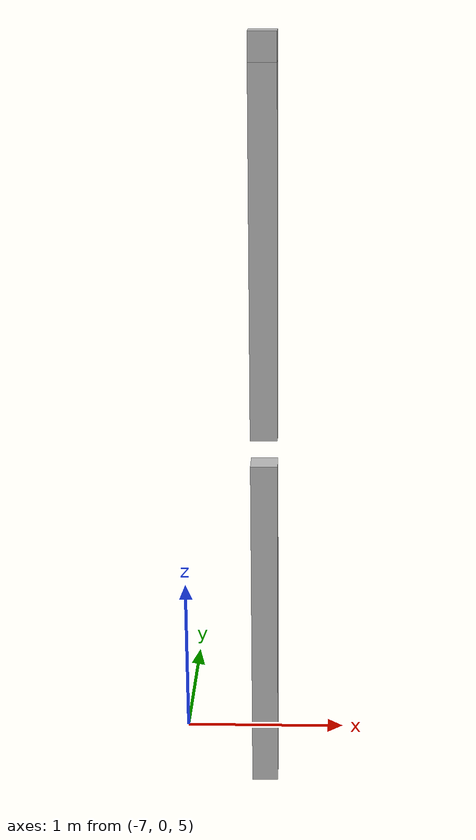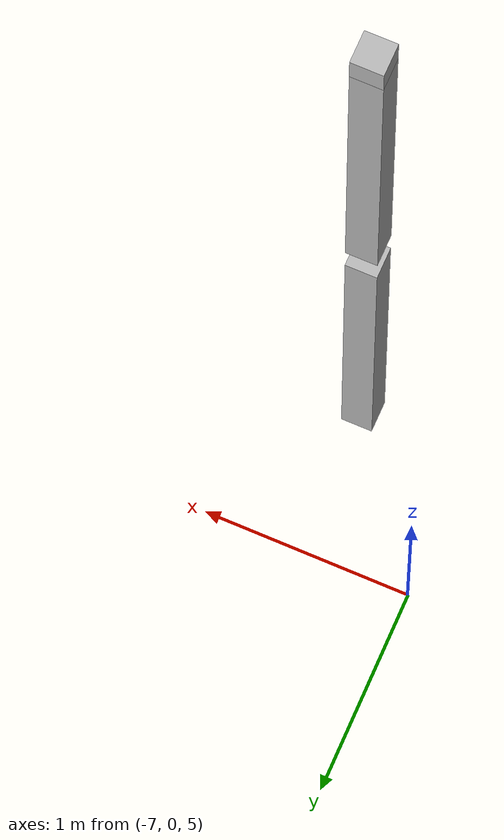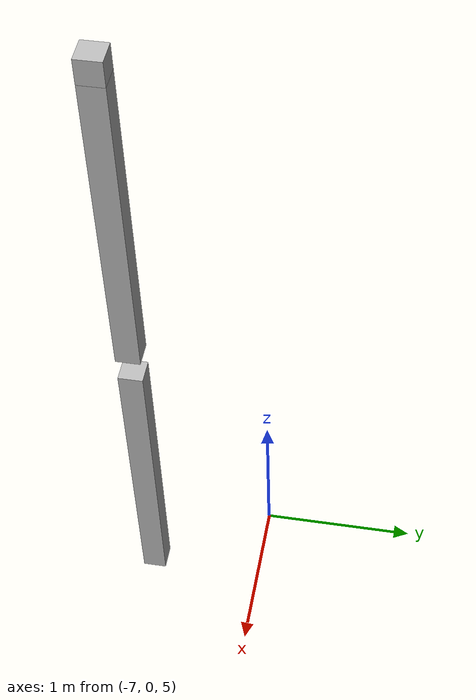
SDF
<sdf version="1.7">
 <world name="default">
  <model name="orthogonal_747_2.000.15_TS">
   <static>1</static>
   <link name="z_link_4_2_0">
    <inertial>
     <mass>1</mass>
     <inertia>
      <ixx>0.166667</ixx>
      <ixy>0</ixy>
      <ixz>0</ixz>
      <iyy>0.166667</iyy>
      <iyz>0</iyz>
      <izz>0.166667</izz>
     </inertia>
    </inertial>
    <pose>0 4.3 8.6 0 -0 0</pose>
    <visual name="visual_0">
     <laser_retro>3872</laser_retro>
     <geometry><box><size>0.15 1e-06 2</size></box></geometry>
     <material>
      <script><name>Gazebo/Grey</name><uri>file://media/materials/scripts/gazebo.material</uri></script>
      <shader type="pixel"><normal_map>__default__</normal_map></shader>
      <ambient>0.678 0.498 0.659 1</ambient>
      <diffuse>0.7 0.7 0.7 1</diffuse>
      <specular>0.01 0.01 0.01 1</specular>
      <emissive>0 0 0 1</emissive>
     </material>
     <pose>0 -0.075 0 0 -0 0</pose>
     <transparency>1</transparency>
    </visual>
    <visual name="visual_1">
     <laser_retro>3873</laser_retro>
     <geometry><box><size>0.15 1e-06 2</size></box></geometry>
     <material>
      <script><name>Gazebo/Grey</name><uri>file://media/materials/scripts/gazebo.material</uri></script>
      <shader type="pixel"><normal_map>__default__</normal_map></shader>
      <ambient>0.447 0.624 0.812 1</ambient>
      <diffuse>0.7 0.7 0.7 1</diffuse>
      <specular>0.01 0.01 0.01 1</specular>
      <emissive>0 0 0 1</emissive>
     </material>
     <pose>0 0.075 0 0 -0 0</pose>
     <transparency>1</transparency>
    </visual>
    <visual name="visual_2">
     <laser_retro>3874</laser_retro>
     <geometry><box><size>0.15 0.15 1e-06</size></box></geometry>
     <material>
      <script><name>Gazebo/Grey</name><uri>file://media/materials/scripts/gazebo.material</uri></script>
      <shader type="pixel"><normal_map>__default__</normal_map></shader>
      <ambient>0.988 0.686 0.243 1</ambient>
      <diffuse>0.7 0.7 0.7 1</diffuse>
      <specular>0.01 0.01 0.01 1</specular>
      <emissive>0 0 0 1</emissive>
     </material>
     <pose>0 0 -1 0 -0 0</pose>
     <transparency>1</transparency>
    </visual>
    <visual name="visual_3">
     <laser_retro>3875</laser_retro>
     <geometry><box><size>1e-06 0.15 2</size></box></geometry>
     <material>
      <script><name>Gazebo/Grey</name><uri>file://media/materials/scripts/gazebo.material</uri></script>
      <shader type="pixel"><normal_map>__default__</normal_map></shader>
      <ambient>0.988 0.914 0.31 1</ambient>
      <diffuse>0.7 0.7 0.7 1</diffuse>
      <specular>0.01 0.01 0.01 1</specular>
      <emissive>0 0 0 1</emissive>
     </material>
     <pose>0.075 0 0 0 -0 0</pose>
     <transparency>1</transparency>
    </visual>
    <visual name="visual_4">
     <laser_retro>3876</laser_retro>
     <geometry><box><size>0.15 0.15 1e-06</size></box></geometry>
     <material>
      <script><name>Gazebo/Grey</name><uri>file://media/materials/scripts/gazebo.material</uri></script>
      <shader type="pixel"><normal_map>__default__</normal_map></shader>
      <ambient>0.937 0.161 0.161 1</ambient>
      <diffuse>0.7 0.7 0.7 1</diffuse>
      <specular>0.01 0.01 0.01 1</specular>
      <emissive>0 0 0 1</emissive>
     </material>
     <pose>0 0 1 0 -0 0</pose>
     <transparency>1</transparency>
    </visual>
    <visual name="visual_5">
     <laser_retro>3877</laser_retro>
     <geometry><box><size>1e-06 0.15 2</size></box></geometry>
     <material>
      <script><name>Gazebo/Grey</name><uri>file://media/materials/scripts/gazebo.material</uri></script>
      <shader type="pixel"><normal_map>__default__</normal_map></shader>
      <ambient>0.541 0.886 0.204 1</ambient>
      <diffuse>0.7 0.7 0.7 1</diffuse>
      <specular>0.01 0.01 0.01 1</specular>
      <emissive>0 0 0 1</emissive>
     </material>
     <pose>-0.075 0 0 0 -0 0</pose>
     <transparency>1</transparency>
    </visual>
    <visual name="visual_texture">
     <geometry><box><size>0.149985 0.149985 1.9998</size></box></geometry>
     <material>
      <script>
       <uri>model://BASE_MODELS/simple_block_v2_textured/materials/scripts</uri>
       <uri>model://BASE_MODELS/simple_block_v2_textured/materials/textures</uri>
       <name>metal</name>
      </script>
     </material>
     <laser_retro>3878</laser_retro>
    </visual>
    <collision name="collision">
     <geometry><box><size>0.15 0.15 2</size></box></geometry>
     <surface>
      <friction>
       <ode><mu>1</mu><mu2>1</mu2><fdir1>0 0 0</fdir1><slip1>0</slip1><slip2>0</slip2></ode>
       <torsional>
        <coefficient>1</coefficient>
        <patch_radius>0</patch_radius>
        <surface_radius>0</surface_radius>
        <use_patch_radius>1</use_patch_radius>
        <ode><slip>0</slip></ode>
       </torsional>
      </friction>
      <bounce><restitution_coefficient>0</restitution_coefficient><threshold>1e+06</threshold></bounce>
      <contact>
       <collide_without_contact>0</collide_without_contact>
       <collide_without_contact_bitmask>1</collide_without_contact_bitmask>
       <collide_bitmask>1</collide_bitmask>
       <ode>
        <soft_cfm>0</soft_cfm>
        <soft_erp>0.2</soft_erp>
        <kp>1e+13</kp>
        <kd>1</kd>
        <max_vel>0.01</max_vel>
        <min_depth>0</min_depth>
       </ode>
       <bullet>
        <split_impulse>1</split_impulse>
        <split_impulse_penetration_threshold>-0.01</split_impulse_penetration_threshold>
        <soft_cfm>0</soft_cfm>
        <soft_erp>0.2</soft_erp>
        <kp>1e+13</kp>
        <kd>1</kd>
       </bullet>
      </contact>
     </surface>
    </collision>
   </link>
   <link name="u_link_5_2_0">
    <inertial>
     <mass>1</mass>
     <inertia>
      <ixx>0.166667</ixx>
      <ixy>0</ixy>
      <ixz>0</ixz>
      <iyy>0.166667</iyy>
      <iyz>0</iyz>
      <izz>0.166667</izz>
     </inertia>
    </inertial>
    <pose>0 4.3 11.825 0 -0 0</pose>
    <visual name="visual_0">
     <laser_retro>4768</laser_retro>
     <geometry><box><size>0.15 1e-06 0.15</size></box></geometry>
     <material>
      <script><name>Gazebo/Grey</name><uri>file://media/materials/scripts/gazebo.material</uri></script>
      <shader type="pixel"><normal_map>__default__</normal_map></shader>
      <ambient>0.678 0.498 0.659 1</ambient>
      <diffuse>0.7 0.7 0.7 1</diffuse>
      <specular>0.01 0.01 0.01 1</specular>
      <emissive>0 0 0 1</emissive>
     </material>
     <pose>0 -0.075 0 0 -0 0</pose>
     <transparency>1</transparency>
    </visual>
    <visual name="visual_1">
     <laser_retro>4769</laser_retro>
     <geometry><box><size>0.15 1e-06 0.15</size></box></geometry>
     <material>
      <script><name>Gazebo/Grey</name><uri>file://media/materials/scripts/gazebo.material</uri></script>
      <shader type="pixel"><normal_map>__default__</normal_map></shader>
      <ambient>0.447 0.624 0.812 1</ambient>
      <diffuse>0.7 0.7 0.7 1</diffuse>
      <specular>0.01 0.01 0.01 1</specular>
      <emissive>0 0 0 1</emissive>
     </material>
     <pose>0 0.075 0 0 -0 0</pose>
     <transparency>1</transparency>
    </visual>
    <visual name="visual_2">
     <laser_retro>4770</laser_retro>
     <geometry><box><size>0.15 0.15 1e-06</size></box></geometry>
     <material>
      <script><name>Gazebo/Grey</name><uri>file://media/materials/scripts/gazebo.material</uri></script>
      <shader type="pixel"><normal_map>__default__</normal_map></shader>
      <ambient>0.988 0.686 0.243 1</ambient>
      <diffuse>0.7 0.7 0.7 1</diffuse>
      <specular>0.01 0.01 0.01 1</specular>
      <emissive>0 0 0 1</emissive>
     </material>
     <pose>0 0 -0.075 0 -0 0</pose>
     <transparency>1</transparency>
    </visual>
    <visual name="visual_3">
     <laser_retro>4771</laser_retro>
     <geometry><box><size>1e-06 0.15 0.15</size></box></geometry>
     <material>
      <script><name>Gazebo/Grey</name><uri>file://media/materials/scripts/gazebo.material</uri></script>
      <shader type="pixel"><normal_map>__default__</normal_map></shader>
      <ambient>0.988 0.914 0.31 1</ambient>
      <diffuse>0.7 0.7 0.7 1</diffuse>
      <specular>0.01 0.01 0.01 1</specular>
      <emissive>0 0 0 1</emissive>
     </material>
     <pose>0.075 0 0 0 -0 0</pose>
     <transparency>1</transparency>
    </visual>
    <visual name="visual_4">
     <laser_retro>4772</laser_retro>
     <geometry><box><size>0.15 0.15 1e-06</size></box></geometry>
     <material>
      <script><name>Gazebo/Grey</name><uri>file://media/materials/scripts/gazebo.material</uri></script>
      <shader type="pixel"><normal_map>__default__</normal_map></shader>
      <ambient>0.937 0.161 0.161 1</ambient>
      <diffuse>0.7 0.7 0.7 1</diffuse>
      <specular>0.01 0.01 0.01 1</specular>
      <emissive>0 0 0 1</emissive>
     </material>
     <pose>0 0 0.075 0 -0 0</pose>
     <transparency>1</transparency>
    </visual>
    <visual name="visual_5">
     <laser_retro>4773</laser_retro>
     <geometry><box><size>1e-06 0.15 0.15</size></box></geometry>
     <material>
      <script><name>Gazebo/Grey</name><uri>file://media/materials/scripts/gazebo.material</uri></script>
      <shader type="pixel"><normal_map>__default__</normal_map></shader>
      <ambient>0.541 0.886 0.204 1</ambient>
      <diffuse>0.7 0.7 0.7 1</diffuse>
      <specular>0.01 0.01 0.01 1</specular>
      <emissive>0 0 0 1</emissive>
     </material>
     <pose>-0.075 0 0 0 -0 0</pose>
     <transparency>1</transparency>
    </visual>
    <visual name="visual_texture">
     <geometry><box><size>0.149985 0.149985 0.149985</size></box></geometry>
     <material>
      <script>
       <uri>model://BASE_MODELS/simple_block_v2_textured/materials/scripts</uri>
       <uri>model://BASE_MODELS/simple_block_v2_textured/materials/textures</uri>
       <name>metal</name>
      </script>
     </material>
     <laser_retro>4774</laser_retro>
    </visual>
    <collision name="collision">
     <geometry><box><size>0.15 0.15 0.15</size></box></geometry>
     <surface>
      <friction>
       <ode><mu>1</mu><mu2>1</mu2><fdir1>0 0 0</fdir1><slip1>0</slip1><slip2>0</slip2></ode>
       <torsional>
        <coefficient>1</coefficient>
        <patch_radius>0</patch_radius>
        <surface_radius>0</surface_radius>
        <use_patch_radius>1</use_patch_radius>
        <ode><slip>0</slip></ode>
       </torsional>
      </friction>
      <bounce><restitution_coefficient>0</restitution_coefficient><threshold>1e+06</threshold></bounce>
      <contact>
       <collide_without_contact>0</collide_without_contact>
       <collide_without_contact_bitmask>1</collide_without_contact_bitmask>
       <collide_bitmask>1</collide_bitmask>
       <ode>
        <soft_cfm>0</soft_cfm>
        <soft_erp>0.2</soft_erp>
        <kp>1e+13</kp>
        <kd>1</kd>
        <max_vel>0.01</max_vel>
        <min_depth>0</min_depth>
       </ode>
       <bullet>
        <split_impulse>1</split_impulse>
        <split_impulse_penetration_threshold>-0.01</split_impulse_penetration_threshold>
        <soft_cfm>0</soft_cfm>
        <soft_erp>0.2</soft_erp>
        <kp>1e+13</kp>
        <kd>1</kd>
       </bullet>
      </contact>
     </surface>
    </collision>
   </link>
   <link name="z_link_5_2_0">
    <inertial>
     <mass>1</mass>
     <inertia>
      <ixx>0.166667</ixx>
      <ixy>0</ixy>
      <ixz>0</ixz>
      <iyy>0.166667</iyy>
      <iyz>0</iyz>
      <izz>0.166667</izz>
     </inertia>
    </inertial>
    <pose>0 4.3 10.75 0 -0 0</pose>
    <visual name="visual_0">
     <laser_retro>4775</laser_retro>
     <geometry><box><size>0.15 1e-06 2</size></box></geometry>
     <material>
      <script><name>Gazebo/Grey</name><uri>file://media/materials/scripts/gazebo.material</uri></script>
      <shader type="pixel"><normal_map>__default__</normal_map></shader>
      <ambient>0.678 0.498 0.659 1</ambient>
      <diffuse>0.7 0.7 0.7 1</diffuse>
      <specular>0.01 0.01 0.01 1</specular>
      <emissive>0 0 0 1</emissive>
     </material>
     <pose>0 -0.075 0 0 -0 0</pose>
     <transparency>1</transparency>
    </visual>
    <visual name="visual_1">
     <laser_retro>4776</laser_retro>
     <geometry><box><size>0.15 1e-06 2</size></box></geometry>
     <material>
      <script><name>Gazebo/Grey</name><uri>file://media/materials/scripts/gazebo.material</uri></script>
      <shader type="pixel"><normal_map>__default__</normal_map></shader>
      <ambient>0.447 0.624 0.812 1</ambient>
      <diffuse>0.7 0.7 0.7 1</diffuse>
      <specular>0.01 0.01 0.01 1</specular>
      <emissive>0 0 0 1</emissive>
     </material>
     <pose>0 0.075 0 0 -0 0</pose>
     <transparency>1</transparency>
    </visual>
    <visual name="visual_2">
     <laser_retro>4777</laser_retro>
     <geometry><box><size>0.15 0.15 1e-06</size></box></geometry>
     <material>
      <script><name>Gazebo/Grey</name><uri>file://media/materials/scripts/gazebo.material</uri></script>
      <shader type="pixel"><normal_map>__default__</normal_map></shader>
      <ambient>0.988 0.686 0.243 1</ambient>
      <diffuse>0.7 0.7 0.7 1</diffuse>
      <specular>0.01 0.01 0.01 1</specular>
      <emissive>0 0 0 1</emissive>
     </material>
     <pose>0 0 -1 0 -0 0</pose>
     <transparency>1</transparency>
    </visual>
    <visual name="visual_3">
     <laser_retro>4778</laser_retro>
     <geometry><box><size>1e-06 0.15 2</size></box></geometry>
     <material>
      <script><name>Gazebo/Grey</name><uri>file://media/materials/scripts/gazebo.material</uri></script>
      <shader type="pixel"><normal_map>__default__</normal_map></shader>
      <ambient>0.988 0.914 0.31 1</ambient>
      <diffuse>0.7 0.7 0.7 1</diffuse>
      <specular>0.01 0.01 0.01 1</specular>
      <emissive>0 0 0 1</emissive>
     </material>
     <pose>0.075 0 0 0 -0 0</pose>
     <transparency>1</transparency>
    </visual>
    <visual name="visual_4">
     <laser_retro>4779</laser_retro>
     <geometry><box><size>0.15 0.15 1e-06</size></box></geometry>
     <material>
      <script><name>Gazebo/Grey</name><uri>file://media/materials/scripts/gazebo.material</uri></script>
      <shader type="pixel"><normal_map>__default__</normal_map></shader>
      <ambient>0.937 0.161 0.161 1</ambient>
      <diffuse>0.7 0.7 0.7 1</diffuse>
      <specular>0.01 0.01 0.01 1</specular>
      <emissive>0 0 0 1</emissive>
     </material>
     <pose>0 0 1 0 -0 0</pose>
     <transparency>1</transparency>
    </visual>
    <visual name="visual_5">
     <laser_retro>4780</laser_retro>
     <geometry><box><size>1e-06 0.15 2</size></box></geometry>
     <material>
      <script><name>Gazebo/Grey</name><uri>file://media/materials/scripts/gazebo.material</uri></script>
      <shader type="pixel"><normal_map>__default__</normal_map></shader>
      <ambient>0.541 0.886 0.204 1</ambient>
      <diffuse>0.7 0.7 0.7 1</diffuse>
      <specular>0.01 0.01 0.01 1</specular>
      <emissive>0 0 0 1</emissive>
     </material>
     <pose>-0.075 0 0 0 -0 0</pose>
     <transparency>1</transparency>
    </visual>
    <visual name="visual_texture">
     <geometry><box><size>0.149985 0.149985 1.9998</size></box></geometry>
     <material>
      <script>
       <uri>model://BASE_MODELS/simple_block_v2_textured/materials/scripts</uri>
       <uri>model://BASE_MODELS/simple_block_v2_textured/materials/textures</uri>
       <name>metal</name>
      </script>
     </material>
     <laser_retro>4781</laser_retro>
    </visual>
    <collision name="collision">
     <geometry><box><size>0.15 0.15 2</size></box></geometry>
     <surface>
      <friction>
       <ode><mu>1</mu><mu2>1</mu2><fdir1>0 0 0</fdir1><slip1>0</slip1><slip2>0</slip2></ode>
       <torsional>
        <coefficient>1</coefficient>
        <patch_radius>0</patch_radius>
        <surface_radius>0</surface_radius>
        <use_patch_radius>1</use_patch_radius>
        <ode><slip>0</slip></ode>
       </torsional>
      </friction>
      <bounce><restitution_coefficient>0</restitution_coefficient><threshold>1e+06</threshold></bounce>
      <contact>
       <collide_without_contact>0</collide_without_contact>
       <collide_without_contact_bitmask>1</collide_without_contact_bitmask>
       <collide_bitmask>1</collide_bitmask>
       <ode>
        <soft_cfm>0</soft_cfm>
        <soft_erp>0.2</soft_erp>
        <kp>1e+13</kp>
        <kd>1</kd>
        <max_vel>0.01</max_vel>
        <min_depth>0</min_depth>
       </ode>
       <bullet>
        <split_impulse>1</split_impulse>
        <split_impulse_penetration_threshold>-0.01</split_impulse_penetration_threshold>
        <soft_cfm>0</soft_cfm>
        <soft_erp>0.2</soft_erp>
        <kp>1e+13</kp>
        <kd>1</kd>
       </bullet>
      </contact>
     </surface>
    </collision>
   </link>
   <pose>-6.47624 -5 -2.5 0 -0 0</pose>
  </model>
 </world>
</sdf>
